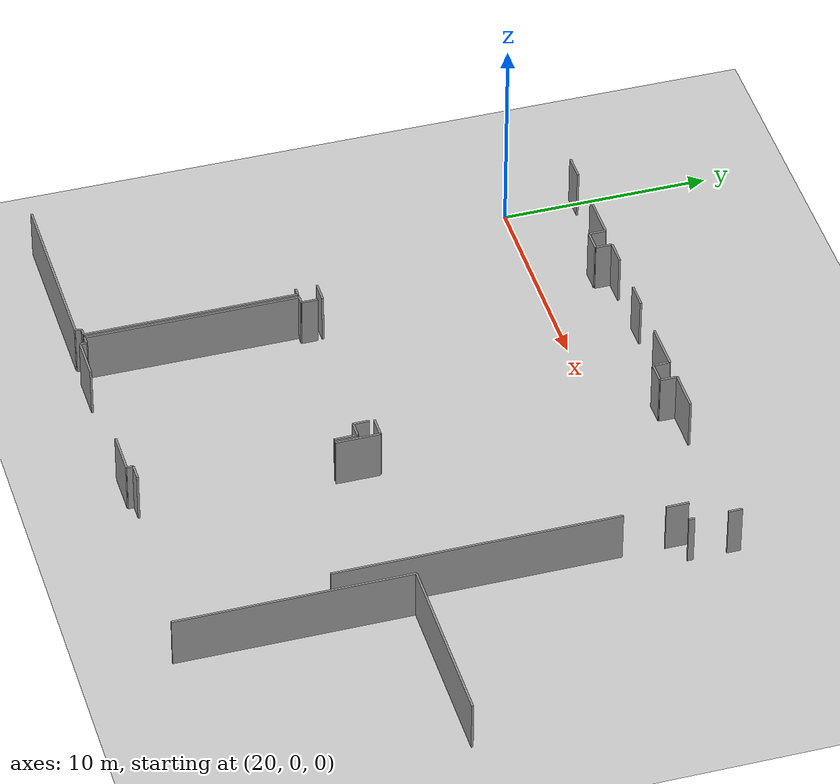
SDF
<sdf version="1.6">
 <world name="default">
  <model name="ground_plane">
   <static>1</static>
   <link name="link">
    <collision name="collision">
     <geometry><plane><normal>0 0 1</normal><size>100 100</size></plane></geometry>
     <surface><friction><ode><mu>100</mu><mu2>50</mu2></ode></friction></surface>
    </collision>
    <visual name="visual">
     <cast_shadows>0</cast_shadows>
     <geometry><plane><normal>0 0 1</normal><size>100 100</size></plane></geometry>
     <material>
      <script><uri>file://media/materials/scripts/gazebo.material</uri><name>Gazebo/Grey</name></script>
     </material>
    </visual>
   </link>
  </model>
  <model name="50010539">
   <static>1</static>
   <link name="Wall_281">
    <collision name="Wall_281_Collision">
     <geometry><box><size>2.10982952669 0.1 2.5</size></box></geometry>
     <pose>1.05491476334 0 1.25 0 0 0</pose>
    </collision>
    <visual name="Wall_281_Visual">
     <pose>1.05491476334 0 1.25 0 0 0</pose>
     <geometry><box><size>2.10982952669 0.1 2.5</size></box></geometry>
     <material>
      <script><uri>file://media/materials/scripts/gazebo.material</uri><name>Gazebo/Grey</name></script>
      <ambient>1 1 1 1</ambient>
     </material>
    </visual>
    <pose>98.5893397017 -35.6411168415 0 0 0 1.57079632679</pose>
   </link>
   <link name="Wall_282">
    <collision name="Wall_282_Collision">
     <geometry><box><size>0.987779782018 0.1 2.5</size></box></geometry>
     <pose>0.493889891009 0 1.25 0 0 0</pose>
    </collision>
    <visual name="Wall_282_Visual">
     <pose>0.493889891009 0 1.25 0 0 0</pose>
     <geometry><box><size>0.987779782018 0.1 2.5</size></box></geometry>
     <material>
      <script><uri>file://media/materials/scripts/gazebo.material</uri><name>Gazebo/Grey</name></script>
      <ambient>1 1 1 1</ambient>
     </material>
    </visual>
    <pose>98.5893397017 -33.5312873149 0 0 0 3.14159265359</pose>
   </link>
   <link name="Wall_283">
    <collision name="Wall_283_Collision">
     <geometry><box><size>0.985620284037 0.1 2.5</size></box></geometry>
     <pose>0.492810142019 0 1.25 0 0 0</pose>
    </collision>
    <visual name="Wall_283_Visual">
     <pose>0.492810142019 0 1.25 0 0 0</pose>
     <geometry><box><size>0.985620284037 0.1 2.5</size></box></geometry>
     <material>
      <script><uri>file://media/materials/scripts/gazebo.material</uri><name>Gazebo/Grey</name></script>
      <ambient>1 1 1 1</ambient>
     </material>
    </visual>
    <pose>88.8776961967 -33.5312873149 0 0 0 3.14159265359</pose>
   </link>
   <link name="Wall_312">
    <collision name="Wall_312_Collision">
     <geometry><box><size>1.20842966388 0.1 2.5</size></box></geometry>
     <pose>0.60421483194 0 1.25 0 0 0</pose>
    </collision>
    <visual name="Wall_312_Visual">
     <pose>0.60421483194 0 1.25 0 0 0</pose>
     <geometry><box><size>1.20842966388 0.1 2.5</size></box></geometry>
     <material>
      <script><uri>file://media/materials/scripts/gazebo.material</uri><name>Gazebo/Grey</name></script>
      <ambient>1 1 1 1</ambient>
     </material>
    </visual>
    <pose>82.3675719621 -19.4633012373 0 0 0 0.0</pose>
   </link>
   <link name="Wall_313">
    <collision name="Wall_313_Collision">
     <geometry><box><size>2.28652727319 0.1 2.5</size></box></geometry>
     <pose>1.14326363659 0 1.25 0 0 0</pose>
    </collision>
    <visual name="Wall_313_Visual">
     <pose>1.14326363659 0 1.25 0 0 0</pose>
     <geometry><box><size>2.28652727319 0.1 2.5</size></box></geometry>
     <material>
      <script><uri>file://media/materials/scripts/gazebo.material</uri><name>Gazebo/Grey</name></script>
      <ambient>1 1 1 1</ambient>
     </material>
    </visual>
    <pose>85.569345291 -19.4633012373 0 0 0 0.0</pose>
   </link>
   <link name="Wall_314">
    <collision name="Wall_314_Collision">
     <geometry><box><size>0.814511826427 0.1 2.5</size></box></geometry>
     <pose>0.407255913214 0 1.25 0 0 0</pose>
    </collision>
    <visual name="Wall_314_Visual">
     <pose>0.407255913214 0 1.25 0 0 0</pose>
     <geometry><box><size>0.814511826427 0.1 2.5</size></box></geometry>
     <material>
      <script><uri>file://media/materials/scripts/gazebo.material</uri><name>Gazebo/Grey</name></script>
      <ambient>1 1 1 1</ambient>
     </material>
    </visual>
    <pose>87.8558725642 -19.4633012373 0 0 0 -1.57079632679</pose>
   </link>
   <link name="Wall_315">
    <collision name="Wall_315_Collision">
     <geometry><box><size>1.02195066182 0.1 2.5</size></box></geometry>
     <pose>0.510975330911 0 1.25 0 0 0</pose>
    </collision>
    <visual name="Wall_315_Visual">
     <pose>0.510975330911 0 1.25 0 0 0</pose>
     <geometry><box><size>1.02195066182 0.1 2.5</size></box></geometry>
     <material>
      <script><uri>file://media/materials/scripts/gazebo.material</uri><name>Gazebo/Grey</name></script>
      <ambient>1 1 1 1</ambient>
     </material>
    </visual>
    <pose>87.8558725642 -20.2778130637 0 0 0 0.0</pose>
   </link>
   <link name="Wall_316">
    <collision name="Wall_316_Collision">
     <geometry><box><size>0.807144127436 0.1 2.5</size></box></geometry>
     <pose>0.403572063718 0 1.25 0 0 0</pose>
    </collision>
    <visual name="Wall_316_Visual">
     <pose>0.403572063718 0 1.25 0 0 0</pose>
     <geometry><box><size>0.807144127436 0.1 2.5</size></box></geometry>
     <material>
      <script><uri>file://media/materials/scripts/gazebo.material</uri><name>Gazebo/Grey</name></script>
      <ambient>1 1 1 1</ambient>
     </material>
    </visual>
    <pose>88.877823226 -20.2778130637 0 0 0 1.57079632679</pose>
   </link>
   <link name="Wall_317">
    <collision name="Wall_317_Collision">
     <geometry><box><size>1.18950229923 0.1 2.5</size></box></geometry>
     <pose>0.594751149615 0 1.25 0 0 0</pose>
    </collision>
    <visual name="Wall_317_Visual">
     <pose>0.594751149615 0 1.25 0 0 0</pose>
     <geometry><box><size>1.18950229923 0.1 2.5</size></box></geometry>
     <material>
      <script><uri>file://media/materials/scripts/gazebo.material</uri><name>Gazebo/Grey</name></script>
      <ambient>1 1 1 1</ambient>
     </material>
    </visual>
    <pose>88.877823226 -19.4706689363 0 0 0 0.0</pose>
   </link>
   <link name="Wall_318">
    <collision name="Wall_318_Collision">
     <geometry><box><size>1.20817560529 0.1 2.5</size></box></geometry>
     <pose>0.604087802647 0 1.25 0 0 0</pose>
    </collision>
    <visual name="Wall_318_Visual">
     <pose>0.604087802647 0 1.25 0 0 0</pose>
     <geometry><box><size>1.20817560529 0.1 2.5</size></box></geometry>
     <material>
      <script><uri>file://media/materials/scripts/gazebo.material</uri><name>Gazebo/Grey</name></script>
      <ambient>1 1 1 1</ambient>
     </material>
    </visual>
    <pose>92.0663855085 -19.4706689363 0 0 0 0.0</pose>
   </link>
   <link name="Wall_319">
    <collision name="Wall_319_Collision">
     <geometry><box><size>2.28462183379 0.1 2.5</size></box></geometry>
     <pose>1.1423109169 0 1.25 0 0 0</pose>
    </collision>
    <visual name="Wall_319_Visual">
     <pose>1.1423109169 0 1.25 0 0 0</pose>
     <geometry><box><size>2.28462183379 0.1 2.5</size></box></geometry>
     <material>
      <script><uri>file://media/materials/scripts/gazebo.material</uri><name>Gazebo/Grey</name></script>
      <ambient>1 1 1 1</ambient>
     </material>
    </visual>
    <pose>95.273621097 -19.4706689363 0 0 0 0.0</pose>
   </link>
   <link name="Wall_320">
    <collision name="Wall_320_Collision">
     <geometry><box><size>0.805238688041 0.1 2.5</size></box></geometry>
     <pose>0.402619344021 0 1.25 0 0 0</pose>
    </collision>
    <visual name="Wall_320_Visual">
     <pose>0.402619344021 0 1.25 0 0 0</pose>
     <geometry><box><size>0.805238688041 0.1 2.5</size></box></geometry>
     <material>
      <script><uri>file://media/materials/scripts/gazebo.material</uri><name>Gazebo/Grey</name></script>
      <ambient>1 1 1 1</ambient>
     </material>
    </visual>
    <pose>97.5582429308 -19.4706689363 0 0 0 -1.57079632679</pose>
   </link>
   <link name="Wall_321">
    <collision name="Wall_321_Collision">
     <geometry><box><size>1.04341861233 0.1 2.5</size></box></geometry>
     <pose>0.521709306166 0 1.25 0 0 0</pose>
    </collision>
    <visual name="Wall_321_Visual">
     <pose>0.521709306166 0 1.25 0 0 0</pose>
     <geometry><box><size>1.04341861233 0.1 2.5</size></box></geometry>
     <material>
      <script><uri>file://media/materials/scripts/gazebo.material</uri><name>Gazebo/Grey</name></script>
      <ambient>1 1 1 1</ambient>
     </material>
    </visual>
    <pose>97.5582429308 -20.2759076243 0 0 0 0.0</pose>
   </link>
   <link name="Wall_322">
    <collision name="Wall_322_Collision">
     <geometry><box><size>0.812860445619 0.1 2.5</size></box></geometry>
     <pose>0.406430222809 0 1.25 0 0 0</pose>
    </collision>
    <visual name="Wall_322_Visual">
     <pose>0.406430222809 0 1.25 0 0 0</pose>
     <geometry><box><size>0.812860445619 0.1 2.5</size></box></geometry>
     <material>
      <script><uri>file://media/materials/scripts/gazebo.material</uri><name>Gazebo/Grey</name></script>
      <ambient>1 1 1 1</ambient>
     </material>
    </visual>
    <pose>98.6016615432 -20.2759076243 0 0 0 1.57079632679</pose>
   </link>
   <link name="Wall_323">
    <collision name="Wall_323_Collision">
     <geometry><box><size>1.9707324509 0.1 2.5</size></box></geometry>
     <pose>0.985366225452 0 1.25 0 0 0</pose>
    </collision>
    <visual name="Wall_323_Visual">
     <pose>0.985366225452 0 1.25 0 0 0</pose>
     <geometry><box><size>1.9707324509 0.1 2.5</size></box></geometry>
     <material>
      <script><uri>file://media/materials/scripts/gazebo.material</uri><name>Gazebo/Grey</name></script>
      <ambient>1 1 1 1</ambient>
     </material>
    </visual>
    <pose>98.6016615432 -19.4630471787 0 0 0 0.0</pose>
   </link>
   <link name="Wall_326">
    <collision name="Wall_326_Collision">
     <geometry><box><size>1.06069459617 0.1 2.5</size></box></geometry>
     <pose>0.530347298087 0 1.25 0 0 0</pose>
    </collision>
    <visual name="Wall_326_Visual">
     <pose>0.530347298087 0 1.25 0 0 0</pose>
     <geometry><box><size>1.06069459617 0.1 2.5</size></box></geometry>
     <material>
      <script><uri>file://media/materials/scripts/gazebo.material</uri><name>Gazebo/Grey</name></script>
      <ambient>1 1 1 1</ambient>
     </material>
    </visual>
    <pose>106.766469348 -21.5992987983 0 0 0 -1.57079632679</pose>
   </link>
   <link name="Wall_327">
    <collision name="Wall_327_Collision">
     <geometry><box><size>13.5057582503 0.1 2.5</size></box></geometry>
     <pose>6.75287912514 0 1.25 0 0 0</pose>
    </collision>
    <visual name="Wall_327_Visual">
     <pose>6.75287912514 0 1.25 0 0 0</pose>
     <geometry><box><size>13.5057582503 0.1 2.5</size></box></geometry>
     <material>
      <script><uri>file://media/materials/scripts/gazebo.material</uri><name>Gazebo/Grey</name></script>
      <ambient>1 1 1 1</ambient>
     </material>
    </visual>
    <pose>106.766469348 -24.6562587333 0 0 0 -1.57004388149</pose>
   </link>
   <link name="Wall_328">
    <collision name="Wall_328_Collision">
     <geometry><box><size>8.66720865832 0.1 2.5</size></box></geometry>
     <pose>4.33360432916 0 1.25 0 0 0</pose>
    </collision>
    <visual name="Wall_328_Visual">
     <pose>4.33360432916 0 1.25 0 0 0</pose>
     <geometry><box><size>8.66720865832 0.1 2.5</size></box></geometry>
     <material>
      <script><uri>file://media/materials/scripts/gazebo.material</uri><name>Gazebo/Grey</name></script>
      <ambient>1 1 1 1</ambient>
     </material>
    </visual>
    <pose>87.8645105561 -45.0688498768 0 0 0 3.14159265359</pose>
   </link>
   <link name="Wall_333">
    <collision name="Wall_333_Collision">
     <geometry><box><size>0.375498589975 0.1 2.5</size></box></geometry>
     <pose>0.187749294987 0 1.25 0 0 0</pose>
    </collision>
    <visual name="Wall_333_Visual">
     <pose>0.187749294987 0 1.25 0 0 0</pose>
     <geometry><box><size>0.375498589975 0.1 2.5</size></box></geometry>
     <material>
      <script><uri>file://media/materials/scripts/gazebo.material</uri><name>Gazebo/Grey</name></script>
      <ambient>1 1 1 1</ambient>
     </material>
    </visual>
    <pose>87.8910596784 -34.5575569726 0 0 0 0.0</pose>
   </link>
   <link name="Wall_334">
    <collision name="Wall_334_Collision">
     <geometry><box><size>10.2112497142 0.1 2.5</size></box></geometry>
     <pose>5.10562485709 0 1.25 0 0 0</pose>
    </collision>
    <visual name="Wall_334_Visual">
     <pose>5.10562485709 0 1.25 0 0 0</pose>
     <geometry><box><size>10.2112497142 0.1 2.5</size></box></geometry>
     <material>
      <script><uri>file://media/materials/scripts/gazebo.material</uri><name>Gazebo/Grey</name></script>
      <ambient>1 1 1 1</ambient>
     </material>
    </visual>
    <pose>88.2665582683 -34.5575569726 0 0 0 -1.57079632679</pose>
   </link>
   <link name="Wall_335">
    <collision name="Wall_335_Collision">
     <geometry><box><size>0.357714488961 0.1 2.5</size></box></geometry>
     <pose>0.178857244481 0 1.25 0 0 0</pose>
    </collision>
    <visual name="Wall_335_Visual">
     <pose>0.178857244481 0 1.25 0 0 0</pose>
     <geometry><box><size>0.357714488961 0.1 2.5</size></box></geometry>
     <material>
      <script><uri>file://media/materials/scripts/gazebo.material</uri><name>Gazebo/Grey</name></script>
      <ambient>1 1 1 1</ambient>
     </material>
    </visual>
    <pose>88.2665582683 -44.7688066868 0 0 0 3.14159265359</pose>
   </link>
   <link name="Wall_336">
    <collision name="Wall_336_Collision">
     <geometry><box><size>0.303300759188 0.1 2.5</size></box></geometry>
     <pose>0.151650379594 0 1.25 0 0 0</pose>
    </collision>
    <visual name="Wall_336_Visual">
     <pose>0.151650379594 0 1.25 0 0 0</pose>
     <geometry><box><size>0.303300759188 0.1 2.5</size></box></geometry>
     <material>
      <script><uri>file://media/materials/scripts/gazebo.material</uri><name>Gazebo/Grey</name></script>
      <ambient>1 1 1 1</ambient>
     </material>
    </visual>
    <pose>87.9088437794 -44.7688066868 0 0 0 -1.71749107011</pose>
   </link>
   <link name="Wall_353">
    <collision name="Wall_353_Collision">
     <geometry><box><size>2.00706282869 0.1 2.5</size></box></geometry>
     <pose>1.00353141434 0 1.25 0 0 0</pose>
    </collision>
    <visual name="Wall_353_Visual">
     <pose>1.00353141434 0 1.25 0 0 0</pose>
     <geometry><box><size>2.00706282869 0.1 2.5</size></box></geometry>
     <material>
      <script><uri>file://media/materials/scripts/gazebo.material</uri><name>Gazebo/Grey</name></script>
      <ambient>1 1 1 1</ambient>
     </material>
    </visual>
    <pose>97.5949543965 -45.0815528061 0 0 0 3.14159265359</pose>
   </link>
   <link name="Wall_354">
    <collision name="Wall_354_Collision">
     <geometry><box><size>2.01519270344 0.1 2.5</size></box></geometry>
     <pose>1.00759635172 0 1.25 0 0 0</pose>
    </collision>
    <visual name="Wall_354_Visual">
     <pose>1.00759635172 0 1.25 0 0 0</pose>
     <geometry><box><size>2.01519270344 0.1 2.5</size></box></geometry>
     <material>
      <script><uri>file://media/materials/scripts/gazebo.material</uri><name>Gazebo/Grey</name></script>
      <ambient>1 1 1 1</ambient>
     </material>
    </visual>
    <pose>90.8878077285 -45.0815528061 0 0 0 3.14159265359</pose>
   </link>
   <link name="Wall_355">
    <collision name="Wall_355_Collision">
     <geometry><box><size>0.303981098041 0.1 2.5</size></box></geometry>
     <pose>0.151990549021 0 1.25 0 0 0</pose>
    </collision>
    <visual name="Wall_355_Visual">
     <pose>0.151990549021 0 1.25 0 0 0</pose>
     <geometry><box><size>0.303981098041 0.1 2.5</size></box></geometry>
     <material>
      <script><uri>file://media/materials/scripts/gazebo.material</uri><name>Gazebo/Grey</name></script>
      <ambient>1 1 1 1</ambient>
     </material>
    </visual>
    <pose>88.872615025 -45.0815528061 0 0 0 1.57079632679</pose>
   </link>
   <link name="Wall_356">
    <collision name="Wall_356_Collision">
     <geometry><box><size>0.39379080816 0.1 2.5</size></box></geometry>
     <pose>0.19689540408 0 1.25 0 0 0</pose>
    </collision>
    <visual name="Wall_356_Visual">
     <pose>0.19689540408 0 1.25 0 0 0</pose>
     <geometry><box><size>0.39379080816 0.1 2.5</size></box></geometry>
     <material>
      <script><uri>file://media/materials/scripts/gazebo.material</uri><name>Gazebo/Grey</name></script>
      <ambient>1 1 1 1</ambient>
     </material>
    </visual>
    <pose>88.872615025 -44.777571708 0 0 0 3.14159265359</pose>
   </link>
   <link name="Wall_357">
    <collision name="Wall_357_Collision">
     <geometry><box><size>10.2236985849 0.1 2.5</size></box></geometry>
     <pose>5.11184929245 0 1.25 0 0 0</pose>
    </collision>
    <visual name="Wall_357_Visual">
     <pose>5.11184929245 0 1.25 0 0 0</pose>
     <geometry><box><size>10.2236985849 0.1 2.5</size></box></geometry>
     <material>
      <script><uri>file://media/materials/scripts/gazebo.material</uri><name>Gazebo/Grey</name></script>
      <ambient>1 1 1 1</ambient>
     </material>
    </visual>
    <pose>88.4788242169 -44.777571708 0 0 0 1.57079632679</pose>
   </link>
   <link name="Wall_358">
    <collision name="Wall_358_Collision">
     <geometry><box><size>0.382104113208 0.1 2.5</size></box></geometry>
     <pose>0.191052056604 0 1.25 0 0 0</pose>
    </collision>
    <visual name="Wall_358_Visual">
     <pose>0.191052056604 0 1.25 0 0 0</pose>
     <geometry><box><size>0.382104113208 0.1 2.5</size></box></geometry>
     <material>
      <script><uri>file://media/materials/scripts/gazebo.material</uri><name>Gazebo/Grey</name></script>
      <ambient>1 1 1 1</ambient>
     </material>
    </visual>
    <pose>88.4788242169 -34.5538731231 0 0 0 0.0</pose>
   </link>
   <link name="Wall_359">
    <collision name="Wall_359_Collision">
     <geometry><box><size>0.785168059755 0.1 2.5</size></box></geometry>
     <pose>0.392584029877 0 1.25 0 0 0</pose>
    </collision>
    <visual name="Wall_359_Visual">
     <pose>0.392584029877 0 1.25 0 0 0</pose>
     <geometry><box><size>0.785168059755 0.1 2.5</size></box></geometry>
     <material>
      <script><uri>file://media/materials/scripts/gazebo.material</uri><name>Gazebo/Grey</name></script>
      <ambient>1 1 1 1</ambient>
     </material>
    </visual>
    <pose>88.8609283301 -34.5538731231 0 0 0 1.57079632679</pose>
   </link>
   <link name="Wall_360">
    <collision name="Wall_360_Collision">
     <geometry><box><size>0.76776504662 0.1 2.5</size></box></geometry>
     <pose>0.38388252331 0 1.25 0 0 0</pose>
    </collision>
    <visual name="Wall_360_Visual">
     <pose>0.38388252331 0 1.25 0 0 0</pose>
     <geometry><box><size>0.76776504662 0.1 2.5</size></box></geometry>
     <material>
      <script><uri>file://media/materials/scripts/gazebo.material</uri><name>Gazebo/Grey</name></script>
      <ambient>1 1 1 1</ambient>
     </material>
    </visual>
    <pose>97.6004166561 -33.7687050634 0 0 0 -1.57079632679</pose>
   </link>
   <link name="Wall_361">
    <collision name="Wall_361_Collision">
     <geometry><box><size>0.773227306217 0.1 2.5</size></box></geometry>
     <pose>0.386613653108 0 1.25 0 0 0</pose>
    </collision>
    <visual name="Wall_361_Visual">
     <pose>0.386613653108 0 1.25 0 0 0</pose>
     <geometry><box><size>0.773227306217 0.1 2.5</size></box></geometry>
     <material>
      <script><uri>file://media/materials/scripts/gazebo.material</uri><name>Gazebo/Grey</name></script>
      <ambient>1 1 1 1</ambient>
     </material>
    </visual>
    <pose>97.6004166561 -34.53647011 0 0 0 0.0</pose>
   </link>
   <link name="Wall_362">
    <collision name="Wall_362_Collision">
     <geometry><box><size>1.10464673154 0.1 2.5</size></box></geometry>
     <pose>0.552323365768 0 1.25 0 0 0</pose>
    </collision>
    <visual name="Wall_362_Visual">
     <pose>0.552323365768 0 1.25 0 0 0</pose>
     <geometry><box><size>1.10464673154 0.1 2.5</size></box></geometry>
     <material>
      <script><uri>file://media/materials/scripts/gazebo.material</uri><name>Gazebo/Grey</name></script>
      <ambient>1 1 1 1</ambient>
     </material>
    </visual>
    <pose>98.3736439623 -34.53647011 0 0 0 -1.57079632679</pose>
   </link>
   <link name="Wall_363">
    <collision name="Wall_363_Collision">
     <geometry><box><size>0.76776504662 0.1 2.5</size></box></geometry>
     <pose>0.38388252331 0 1.25 0 0 0</pose>
    </collision>
    <visual name="Wall_363_Visual">
     <pose>0.38388252331 0 1.25 0 0 0</pose>
     <geometry><box><size>0.76776504662 0.1 2.5</size></box></geometry>
     <material>
      <script><uri>file://media/materials/scripts/gazebo.material</uri><name>Gazebo/Grey</name></script>
      <ambient>1 1 1 1</ambient>
     </material>
    </visual>
    <pose>98.3736439623 -44.7688066868 0 0 0 3.14159265359</pose>
   </link>
   <link name="Wall_364">
    <collision name="Wall_364_Collision">
     <geometry><box><size>0.312936863007 0.1 2.5</size></box></geometry>
     <pose>0.156468431504 0 1.25 0 0 0</pose>
    </collision>
    <visual name="Wall_364_Visual">
     <pose>0.156468431504 0 1.25 0 0 0</pose>
     <geometry><box><size>0.312936863007 0.1 2.5</size></box></geometry>
     <material>
      <script><uri>file://media/materials/scripts/gazebo.material</uri><name>Gazebo/Grey</name></script>
      <ambient>1 1 1 1</ambient>
     </material>
    </visual>
    <pose>97.6058789157 -44.7688066868 0 0 0 -1.60571308039</pose>
   </link>
   <link name="Wall_472">
    <collision name="Wall_472_Collision">
     <geometry><box><size>0.284291557633 0.1 2.5</size></box></geometry>
     <pose>0.142145778817 0 1.25 0 0 0</pose>
    </collision>
    <visual name="Wall_472_Visual">
     <pose>0.142145778817 0 1.25 0 0 0</pose>
     <geometry><box><size>0.284291557633 0.1 2.5</size></box></geometry>
     <material>
      <script><uri>file://media/materials/scripts/gazebo.material</uri><name>Gazebo/Grey</name></script>
      <ambient>1 1 1 1</ambient>
     </material>
    </visual>
    <pose>107.810650136 -21.9492645004 0 0 0 1.57079632679</pose>
   </link>
   <link name="Wall_473">
    <collision name="Wall_473_Collision">
     <geometry><box><size>0.651533243566 0.1 2.5</size></box></geometry>
     <pose>0.325766621783 0 1.25 0 0 0</pose>
    </collision>
    <visual name="Wall_473_Visual">
     <pose>0.325766621783 0 1.25 0 0 0</pose>
     <geometry><box><size>0.651533243566 0.1 2.5</size></box></geometry>
     <material>
      <script><uri>file://media/materials/scripts/gazebo.material</uri><name>Gazebo/Grey</name></script>
      <ambient>1 1 1 1</ambient>
     </material>
    </visual>
    <pose>107.810650136 -20.0875231828 0 0 0 1.57079632679</pose>
   </link>
   <link name="Wall_515">
    <collision name="Wall_515_Collision">
     <geometry><box><size>11.1233200376 0.1 2.5</size></box></geometry>
     <pose>5.5616600188 0 1.25 0 0 0</pose>
    </collision>
    <visual name="Wall_515_Visual">
     <pose>5.5616600188 0 1.25 0 0 0</pose>
     <geometry><box><size>11.1233200376 0.1 2.5</size></box></geometry>
     <material>
      <script><uri>file://media/materials/scripts/gazebo.material</uri><name>Gazebo/Grey</name></script>
      <ambient>1 1 1 1</ambient>
     </material>
    </visual>
    <pose>107.795406621 -45.6487385991 0 0 0 1.57079632679</pose>
   </link>
   <link name="Wall_516">
    <collision name="Wall_516_Collision">
     <geometry><box><size>8.59988313305 0.1 2.5</size></box></geometry>
     <pose>4.29994156653 0 1.25 0 0 0</pose>
    </collision>
    <visual name="Wall_516_Visual">
     <pose>4.29994156653 0 1.25 0 0 0</pose>
     <geometry><box><size>8.59988313305 0.1 2.5</size></box></geometry>
     <material>
      <script><uri>file://media/materials/scripts/gazebo.material</uri><name>Gazebo/Grey</name></script>
      <ambient>1 1 1 1</ambient>
     </material>
    </visual>
    <pose>107.795406621 -34.5254185615 0 0 0 0.0</pose>
   </link>
   <pose>-62.8 22.8208416961 0 0 0 0</pose>
  </model>
 </world>
</sdf>
